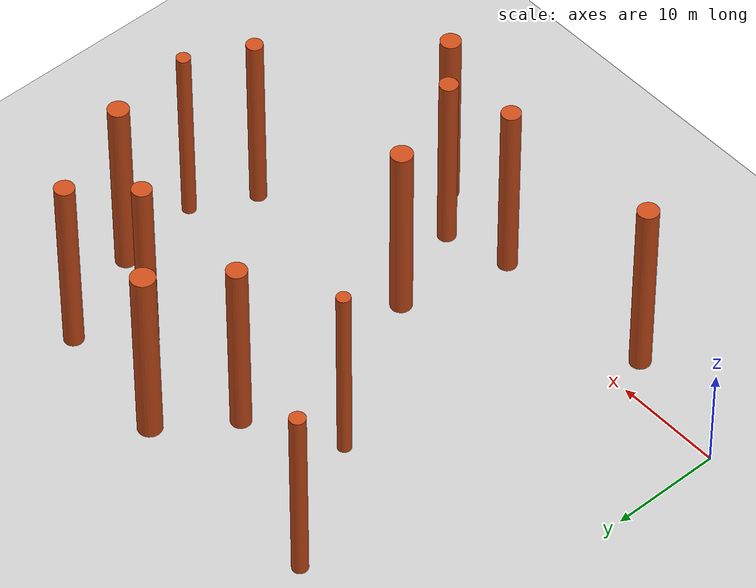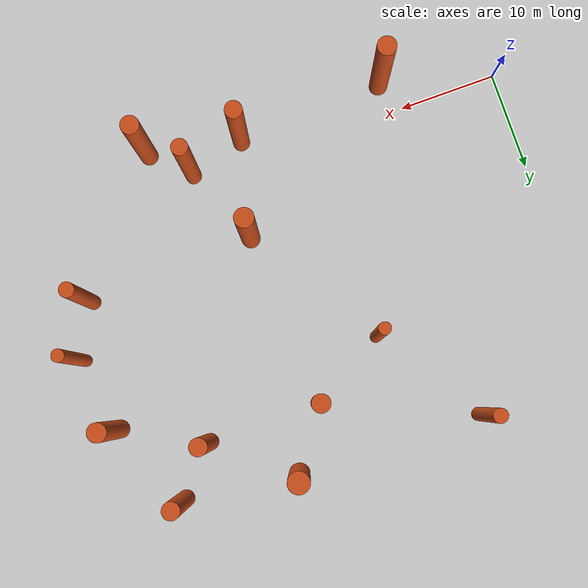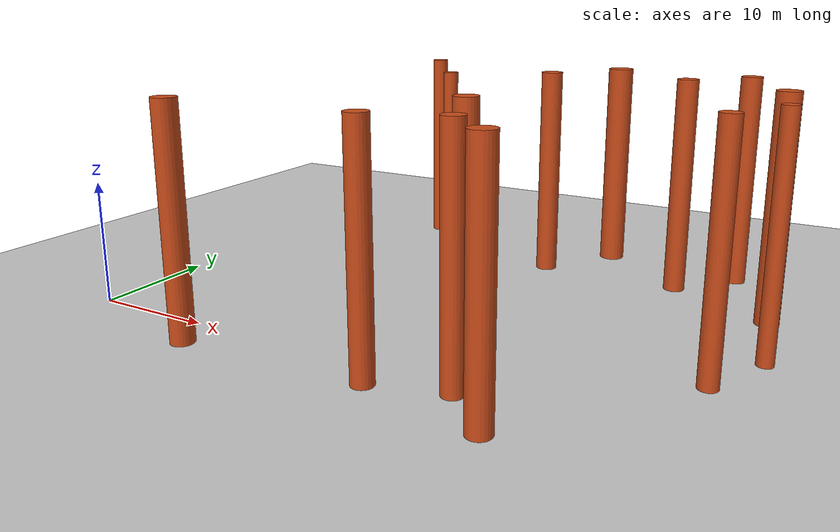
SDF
<?xml version="1.0" ?>
<sdf version="1.9">
  <world name="r7_pillars">
    <gui fullscreen="false">
      <plugin filename="MinimalScene" name="3D View">
        <gz-gui><title>3D View</title><property type="bool" key="showTitleBar">false</property></gz-gui>
        <engine>ogre2</engine><scene>scene</scene>
        <ambient_light>0.6 0.6 0.6</ambient_light>
        <background_color>0.72 0.82 0.92</background_color>
        <camera_pose>-3.0 -2.2 1.5 0 0.10 0.60</camera_pose>
      </plugin>
      <plugin filename="Screenshot" name="Screenshot"><gz-gui><property key="state" type="string">floating</property><property type="bool" key="showTitleBar">false</property></gz-gui></plugin>
      <plugin filename="GzSceneManager" name="Scene Manager"><gz-gui><property key="state" type="string">floating</property><property type="bool" key="showTitleBar">false</property></gz-gui></plugin>
      <plugin filename="InteractiveViewControl" name="Interactive view control"><gz-gui><property key="state" type="string">floating</property><property type="bool" key="showTitleBar">false</property></gz-gui></plugin>
    </gui>

    <physics name="p" type="ignored"><max_step_size>0.004</max_step_size>
      <real_time_factor>1.0</real_time_factor></physics>
    <plugin filename="gz-sim-physics-system" name="gz::sim::systems::Physics"/>
    <plugin filename="gz-sim-scene-broadcaster-system" name="gz::sim::systems::SceneBroadcaster"/>
    <plugin filename="gz-sim-user-commands-system" name="gz::sim::systems::UserCommands"/>
    <plugin filename="gz-sim-sensors-system" name="gz::sim::systems::Sensors"><render_engine>ogre2</render_engine></plugin>
    <plugin filename="gz-sim-imu-system" name="gz::sim::systems::Imu"/>
    <light type="directional" name="sun"><cast_shadows>true</cast_shadows>
      <pose>0 0 10 0 0 0</pose><diffuse>0.8 0.8 0.8 1</diffuse>
      <direction>-0.5 0.1 -0.9</direction></light>
    <model name="ground"><static>true</static><link name="l">
      <collision name="c"><geometry><plane><normal>0 0 1</normal>
        <size>500 500</size></plane></geometry></collision>
      <visual name="v"><geometry><plane><normal>0 0 1</normal>
        <size>500 500</size></plane></geometry></visual></link></model>

    <model name="pillar_0"><static>true</static>
      <pose>46.64 8.19 9.0 0 0 0</pose>
      <link name="l"><collision name="c"><geometry>
        <cylinder><radius>0.74</radius><length>18</length></cylinder>
      </geometry></collision><visual name="v"><geometry>
        <cylinder><radius>0.74</radius><length>18</length></cylinder>
      </geometry><material><ambient>0.8 0.3 0.1 1</ambient><diffuse>0.8 0.3 0.1 1</diffuse><specular>0.1 0.1 0.1 1</specular></material></visual>
      </link></model>

    <model name="pillar_1"><static>true</static>
      <pose>28.34 25.72 9.0 0 0 0</pose>
      <link name="l"><collision name="c"><geometry>
        <cylinder><radius>0.91</radius><length>18</length></cylinder>
      </geometry></collision><visual name="v"><geometry>
        <cylinder><radius>0.91</radius><length>18</length></cylinder>
      </geometry><material><ambient>0.8 0.3 0.1 1</ambient><diffuse>0.8 0.3 0.1 1</diffuse><specular>0.1 0.1 0.1 1</specular></material></visual>
      </link></model>

    <model name="pillar_2"><static>true</static>
      <pose>32.67 31.75 9.0 0 0 0</pose>
      <link name="l"><collision name="c"><geometry>
        <cylinder><radius>1.08</radius><length>18</length></cylinder>
      </geometry></collision><visual name="v"><geometry>
        <cylinder><radius>1.08</radius><length>18</length></cylinder>
      </geometry><material><ambient>0.8 0.3 0.1 1</ambient><diffuse>0.8 0.3 0.1 1</diffuse><specular>0.1 0.1 0.1 1</specular></material></visual>
      </link></model>

    <model name="pillar_3"><static>true</static>
      <pose>13.46 32.25 9.0 0 0 0</pose>
      <link name="l"><collision name="c"><geometry>
        <cylinder><radius>0.71</radius><length>18</length></cylinder>
      </geometry></collision><visual name="v"><geometry>
        <cylinder><radius>0.71</radius><length>18</length></cylinder>
      </geometry><material><ambient>0.8 0.3 0.1 1</ambient><diffuse>0.8 0.3 0.1 1</diffuse><specular>0.1 0.1 0.1 1</specular></material></visual>
      </link></model>

    <model name="pillar_4"><static>true</static>
      <pose>32.63 -0.68 9.0 0 0 0</pose>
      <link name="l"><collision name="c"><geometry>
        <cylinder><radius>0.82</radius><length>18</length></cylinder>
      </geometry></collision><visual name="v"><geometry>
        <cylinder><radius>0.82</radius><length>18</length></cylinder>
      </geometry><material><ambient>0.8 0.3 0.1 1</ambient><diffuse>0.8 0.3 0.1 1</diffuse><specular>0.1 0.1 0.1 1</specular></material></visual>
      </link></model>

    <model name="pillar_5"><static>true</static>
      <pose>48.31 21.34 9.0 0 0 0</pose>
      <link name="l"><collision name="c"><geometry>
        <cylinder><radius>0.94</radius><length>18</length></cylinder>
      </geometry></collision><visual name="v"><geometry>
        <cylinder><radius>0.94</radius><length>18</length></cylinder>
      </geometry><material><ambient>0.8 0.3 0.1 1</ambient><diffuse>0.8 0.3 0.1 1</diffuse><specular>0.1 0.1 0.1 1</specular></material></visual>
      </link></model>

    <model name="pillar_6"><static>true</static>
      <pose>36.25 -4.16 9.0 0 0 0</pose>
      <link name="l"><collision name="c"><geometry>
        <cylinder><radius>0.91</radius><length>18</length></cylinder>
      </geometry></collision><visual name="v"><geometry>
        <cylinder><radius>0.91</radius><length>18</length></cylinder>
      </geometry><material><ambient>0.8 0.3 0.1 1</ambient><diffuse>0.8 0.3 0.1 1</diffuse><specular>0.1 0.1 0.1 1</specular></material></visual>
      </link></model>

    <model name="pillar_7"><static>true</static>
      <pose>29.26 7.45 9.0 0 0 0</pose>
      <link name="l"><collision name="c"><geometry>
        <cylinder><radius>0.97</radius><length>18</length></cylinder>
      </geometry></collision><visual name="v"><geometry>
        <cylinder><radius>0.97</radius><length>18</length></cylinder>
      </geometry><material><ambient>0.8 0.3 0.1 1</ambient><diffuse>0.8 0.3 0.1 1</diffuse><specular>0.1 0.1 0.1 1</specular></material></visual>
      </link></model>

    <model name="pillar_8"><static>true</static>
      <pose>11.51 -3.08 9.0 0 0 0</pose>
      <link name="l"><collision name="c"><geometry>
        <cylinder><radius>0.94</radius><length>18</length></cylinder>
      </geometry></collision><visual name="v"><geometry>
        <cylinder><radius>0.94</radius><length>18</length></cylinder>
      </geometry><material><ambient>0.8 0.3 0.1 1</ambient><diffuse>0.8 0.3 0.1 1</diffuse><specular>0.1 0.1 0.1 1</specular></material></visual>
      </link></model>

    <model name="pillar_9"><static>true</static>
      <pose>44.34 30.22 9.0 0 0 0</pose>
      <link name="l"><collision name="c"><geometry>
        <cylinder><radius>0.88</radius><length>18</length></cylinder>
      </geometry></collision><visual name="v"><geometry>
        <cylinder><radius>0.88</radius><length>18</length></cylinder>
      </geometry><material><ambient>0.8 0.3 0.1 1</ambient><diffuse>0.8 0.3 0.1 1</diffuse><specular>0.1 0.1 0.1 1</specular></material></visual>
      </link></model>

    <model name="pillar_10"><static>true</static>
      <pose>40.13 25.66 9.0 0 0 0</pose>
      <link name="l"><collision name="c"><geometry>
        <cylinder><radius>0.87</radius><length>18</length></cylinder>
      </geometry></collision><visual name="v"><geometry>
        <cylinder><radius>0.87</radius><length>18</length></cylinder>
      </geometry><material><ambient>0.8 0.3 0.1 1</ambient><diffuse>0.8 0.3 0.1 1</diffuse><specular>0.1 0.1 0.1 1</specular></material></visual>
      </link></model>

    <model name="pillar_11"><static>true</static>
      <pose>49.34 13.57 9.0 0 0 0</pose>
      <link name="l"><collision name="c"><geometry>
        <cylinder><radius>0.63</radius><length>18</length></cylinder>
      </geometry></collision><visual name="v"><geometry>
        <cylinder><radius>0.63</radius><length>18</length></cylinder>
      </geometry><material><ambient>0.8 0.3 0.1 1</ambient><diffuse>0.8 0.3 0.1 1</diffuse><specular>0.1 0.1 0.1 1</specular></material></visual>
      </link></model>

    <model name="pillar_12"><static>true</static>
      <pose>20.6 21.29 9.0 0 0 0</pose>
      <link name="l"><collision name="c"><geometry>
        <cylinder><radius>0.62</radius><length>18</length></cylinder>
      </geometry></collision><visual name="v"><geometry>
        <cylinder><radius>0.62</radius><length>18</length></cylinder>
      </geometry><material><ambient>0.8 0.3 0.1 1</ambient><diffuse>0.8 0.3 0.1 1</diffuse><specular>0.1 0.1 0.1 1</specular></material></visual>
      </link></model>

    <model name="pillar_13"><static>true</static>
      <pose>26.82 -2.28 9.0 0 0 0</pose>
      <link name="l"><collision name="c"><geometry>
        <cylinder><radius>0.86</radius><length>18</length></cylinder>
      </geometry></collision><visual name="v"><geometry>
        <cylinder><radius>0.86</radius><length>18</length></cylinder>
      </geometry><material><ambient>0.8 0.3 0.1 1</ambient><diffuse>0.8 0.3 0.1 1</diffuse><specular>0.1 0.1 0.1 1</specular></material></visual>
      </link></model>
  </world>
</sdf>
